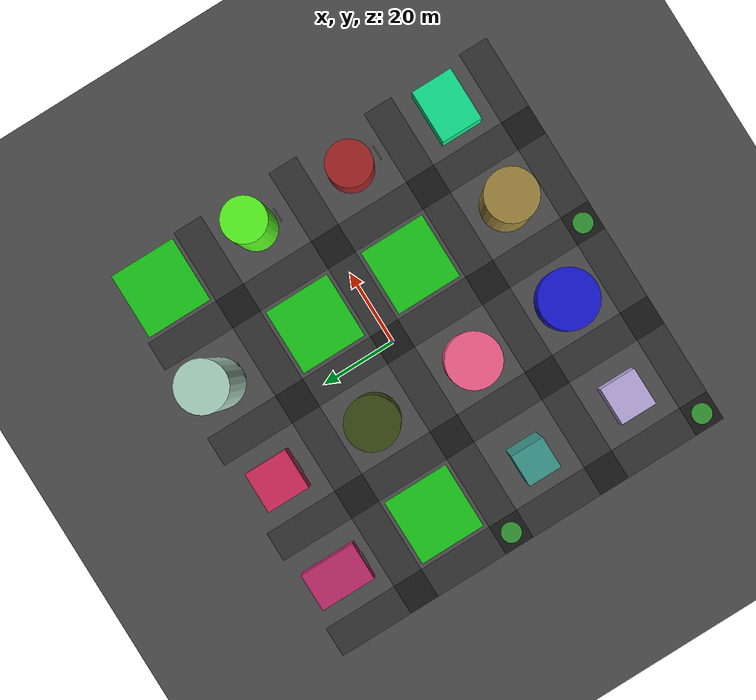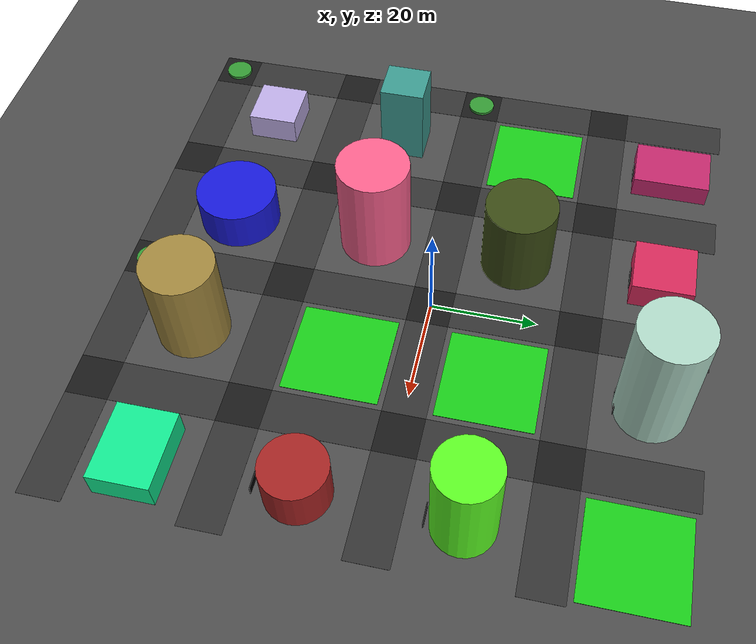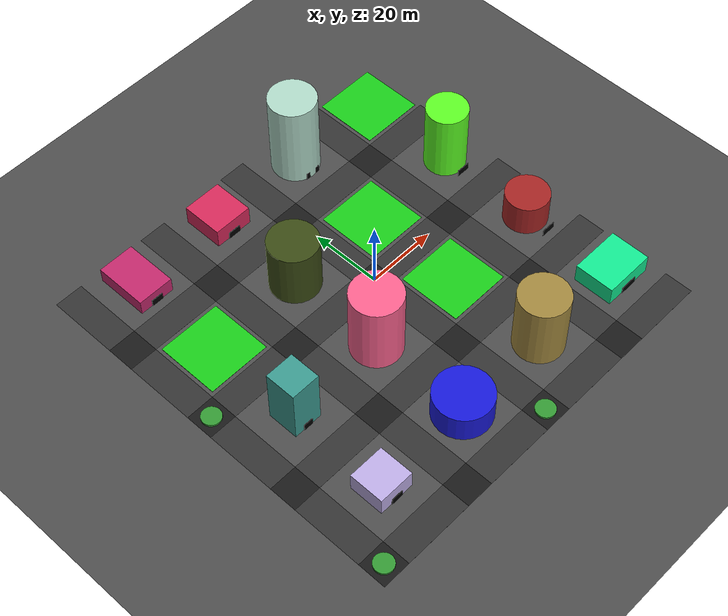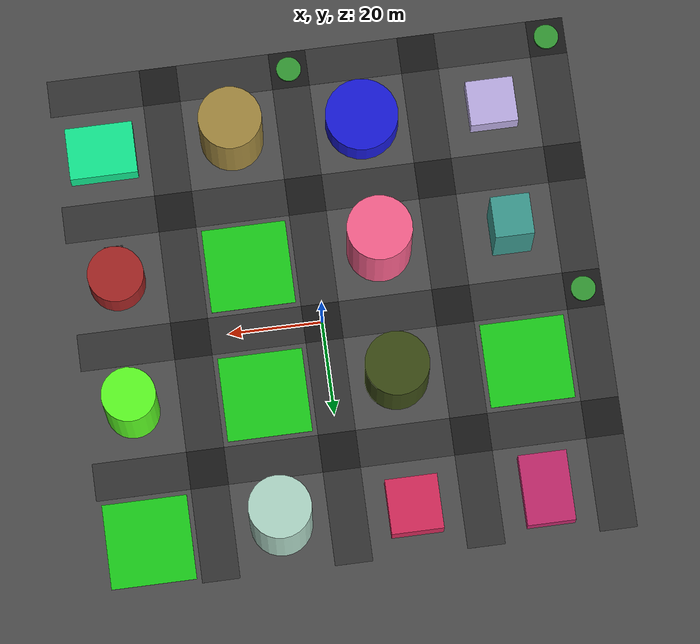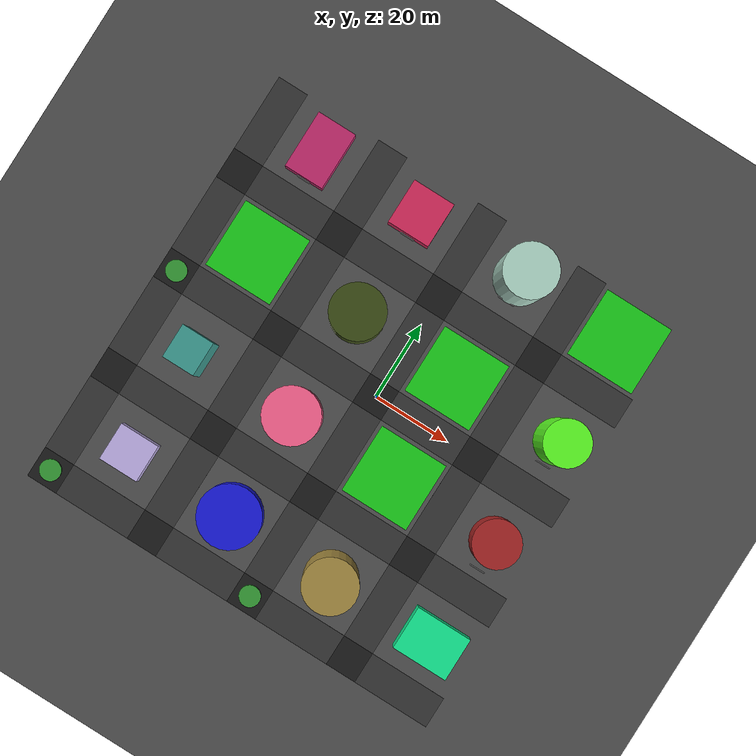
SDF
<?xml version="1.0" ?>
<sdf version="1.8">
  <world name="urban_city_rich">
    <physics name="1ms" type="ignored">
      <max_step_size>0.001</max_step_size>
      <real_time_factor>1.0</real_time_factor>
    </physics>
    <plugin filename="gz-sim-physics-system" name="gz::sim::systems::Physics"></plugin>
    <plugin filename="gz-sim-user-commands-system" name="gz::sim::systems::UserCommands"></plugin>
    <plugin filename="gz-sim-scene-broadcaster-system" name="gz::sim::systems::SceneBroadcaster"></plugin>
    <plugin filename="gz-sim-sensors-system" name="gz::sim::systems::Sensors">
        <render_engine>ogre2</render_engine>
    </plugin>
    <plugin filename="gz-sim-wind-effects-system" name="gz::sim::systems::WindEffects"></plugin>

    <light type="directional" name="sun">
      <cast_shadows>true</cast_shadows>
      <pose>0 0 10 0 0 0</pose>
      <diffuse>0.8 0.8 0.8 1</diffuse>
      <specular>0.2 0.2 0.2 1</specular>
      <direction>-0.5 0.1 -0.9</direction>
    </light>

    <model name="ground_plane">
      <static>true</static>
      <link name="link">
        <collision name="collision">
          <geometry><plane><normal>0 0 1</normal><size>200 200</size></plane></geometry>
          <surface>
            <friction>
              <ode>
                <mu>100</mu>
                <mu2>50</mu2>
              </ode>
            </friction>
          </surface>
        </collision>
        <visual name="visual">
          <geometry><plane><normal>0 0 1</normal><size>200 200</size></plane></geometry>
          <material><ambient>0.3 0.3 0.3 1</ambient><diffuse>0.3 0.3 0.3 1</diffuse></material>
        </visual>
      </link>
    </model>

    <model name="road_inter_-2_-2">
      <static>true</static>
      <pose>-56.0 -56.0 0.01 0 0 0</pose>
      <link name="link">
        <visual name="vis">
            <geometry><box><size>8.0 8.0 0.02</size></box></geometry>
            <material><ambient>0.1 0.1 0.1 1</ambient><diffuse>0.1 0.1 0.1 1</diffuse></material>
        </visual>
      </link>
    </model>

    <model name="roundabout_-2_-2">
      <static>true</static>
      <pose>-56.0 -56.0 0.3 0 0 0</pose>
      <link name="link">
        <collision name="col">
           <geometry><cylinder><radius>2.6666666666666665</radius><length>0.6</length></cylinder></geometry>
        </collision>
        <visual name="vis">
           <geometry><cylinder><radius>2.6666666666666665</radius><length>0.6</length></cylinder></geometry>
           <material><ambient>0.2 0.6 0.2 1</ambient><diffuse>0.2 0.6 0.2 1</diffuse></material>
        </visual>
      </link>
    </model>

    <model name="road_h_-2_-2">
      <static>true</static>
      <pose>-42.0 -56.0 0.01 0 0 0</pose>
      <link name="link">
        <visual name="vis">
            <geometry><box><size>20.0 8.0 0.02</size></box></geometry>
            <material><ambient>0.2 0.2 0.2 1</ambient><diffuse>0.2 0.2 0.2 1</diffuse></material>
        </visual>
      </link>
    </model>
    <model name="road_v_-2_-2">
      <static>true</static>
      <pose>-56.0 -42.0 0.01 0 0 0</pose>
      <link name="link">
        <visual name="vis">
            <geometry><box><size>8.0 20.0 0.02</size></box></geometry>
            <material><ambient>0.2 0.2 0.2 1</ambient><diffuse>0.2 0.2 0.2 1</diffuse></material>
        </visual>
      </link>
    </model>

    <model name="bldg_0">
      <static>true</static>
      <pose>-42.0 -42.0 2.7501075522266696 0 0 0</pose>
      <link name="link">
        <collision name="col">
           <geometry><box><size>10.200234546952954 9.785685905190583 5.500215104453339</size></box></geometry>
        </collision>
        <visual name="vis">
           <geometry><box><size>10.200234546952954 9.785685905190583 5.500215104453339</size></box></geometry>
           <material><ambient>0.7364712141640124 0.6766994874229113 0.8921795677048454 1</ambient><diffuse>0.7364712141640124 0.6766994874229113 0.8921795677048454 1</diffuse></material>
        </visual>
      </link>
    </model>

    <model name="door_0">
      <static>true</static>
      <pose>-42.0 -46.99284295259529 1.0 0 0 0</pose>
      <link name="link">
        <visual name="vis">
           <geometry><box><size>3.4000781823176514 0.2 2.0</size></box></geometry>
           <material><ambient>0 0 0 1</ambient><diffuse>0 0 0 1</diffuse></material>
        </visual>
      </link>
    </model>

    <model name="road_inter_-2_-1">
      <static>true</static>
      <pose>-56.0 -28.0 0.01 0 0 0</pose>
      <link name="link">
        <visual name="vis">
            <geometry><box><size>8.0 8.0 0.02</size></box></geometry>
            <material><ambient>0.1 0.1 0.1 1</ambient><diffuse>0.1 0.1 0.1 1</diffuse></material>
        </visual>
      </link>
    </model>

    <model name="road_h_-2_-1">
      <static>true</static>
      <pose>-42.0 -28.0 0.01 0 0 0</pose>
      <link name="link">
        <visual name="vis">
            <geometry><box><size>20.0 8.0 0.02</size></box></geometry>
            <material><ambient>0.2 0.2 0.2 1</ambient><diffuse>0.2 0.2 0.2 1</diffuse></material>
        </visual>
      </link>
    </model>
    <model name="road_v_-2_-1">
      <static>true</static>
      <pose>-56.0 -14.0 0.01 0 0 0</pose>
      <link name="link">
        <visual name="vis">
            <geometry><box><size>8.0 20.0 0.02</size></box></geometry>
            <material><ambient>0.2 0.2 0.2 1</ambient><diffuse>0.2 0.2 0.2 1</diffuse></material>
        </visual>
      </link>
    </model>

    <model name="bldg_1">
      <static>true</static>
      <pose>-42.0 -14.0 8.404925124490397 0 0 0</pose>
      <link name="link">
        <collision name="col">
           <geometry><box><size>8.254261435854268 8.74956191889274 16.809850248980794</size></box></geometry>
        </collision>
        <visual name="vis">
           <geometry><box><size>8.254261435854268 8.74956191889274 16.809850248980794</size></box></geometry>
           <material><ambient>0.2326608933907396 0.6020187290499803 0.561245062938613 1</ambient><diffuse>0.2326608933907396 0.6020187290499803 0.561245062938613 1</diffuse></material>
        </visual>
      </link>
    </model>

    <model name="door_1">
      <static>true</static>
      <pose>-42.0 -18.47478095944637 1.0 0 0 0</pose>
      <link name="link">
        <visual name="vis">
           <geometry><box><size>2.751420478618089 0.2 2.0</size></box></geometry>
           <material><ambient>0 0 0 1</ambient><diffuse>0 0 0 1</diffuse></material>
        </visual>
      </link>
    </model>

    <model name="road_inter_-2_0">
      <static>true</static>
      <pose>-56.0 0.0 0.01 0 0 0</pose>
      <link name="link">
        <visual name="vis">
            <geometry><box><size>8.0 8.0 0.02</size></box></geometry>
            <material><ambient>0.1 0.1 0.1 1</ambient><diffuse>0.1 0.1 0.1 1</diffuse></material>
        </visual>
      </link>
    </model>

    <model name="roundabout_-2_0">
      <static>true</static>
      <pose>-56.0 0.0 0.3 0 0 0</pose>
      <link name="link">
        <collision name="col">
           <geometry><cylinder><radius>2.6666666666666665</radius><length>0.6</length></cylinder></geometry>
        </collision>
        <visual name="vis">
           <geometry><cylinder><radius>2.6666666666666665</radius><length>0.6</length></cylinder></geometry>
           <material><ambient>0.2 0.6 0.2 1</ambient><diffuse>0.2 0.6 0.2 1</diffuse></material>
        </visual>
      </link>
    </model>

    <model name="road_h_-2_0">
      <static>true</static>
      <pose>-42.0 0.0 0.01 0 0 0</pose>
      <link name="link">
        <visual name="vis">
            <geometry><box><size>20.0 8.0 0.02</size></box></geometry>
            <material><ambient>0.2 0.2 0.2 1</ambient><diffuse>0.2 0.2 0.2 1</diffuse></material>
        </visual>
      </link>
    </model>
    <model name="road_v_-2_0">
      <static>true</static>
      <pose>-56.0 14.0 0.01 0 0 0</pose>
      <link name="link">
        <visual name="vis">
            <geometry><box><size>8.0 20.0 0.02</size></box></geometry>
            <material><ambient>0.2 0.2 0.2 1</ambient><diffuse>0.2 0.2 0.2 1</diffuse></material>
        </visual>
      </link>
    </model>

    <model name="park_-2_0">
      <static>true</static>
      <pose>-42.0 14.0 0.05 0 0 0</pose>
      <link name="link">
        <visual name="vis">
            <geometry><box><size>18.0 18.0 0.1</size></box></geometry>
            <material><ambient>0.1 0.8 0.1 1</ambient><diffuse>0.1 0.8 0.1 1</diffuse></material>
        </visual>
      </link>
    </model>

    <model name="road_inter_-2_1">
      <static>true</static>
      <pose>-56.0 28.0 0.01 0 0 0</pose>
      <link name="link">
        <visual name="vis">
            <geometry><box><size>8.0 8.0 0.02</size></box></geometry>
            <material><ambient>0.1 0.1 0.1 1</ambient><diffuse>0.1 0.1 0.1 1</diffuse></material>
        </visual>
      </link>
    </model>

    <model name="road_h_-2_1">
      <static>true</static>
      <pose>-42.0 28.0 0.01 0 0 0</pose>
      <link name="link">
        <visual name="vis">
            <geometry><box><size>20.0 8.0 0.02</size></box></geometry>
            <material><ambient>0.2 0.2 0.2 1</ambient><diffuse>0.2 0.2 0.2 1</diffuse></material>
        </visual>
      </link>
    </model>
    <model name="road_v_-2_1">
      <static>true</static>
      <pose>-56.0 42.0 0.01 0 0 0</pose>
      <link name="link">
        <visual name="vis">
            <geometry><box><size>8.0 20.0 0.02</size></box></geometry>
            <material><ambient>0.2 0.2 0.2 1</ambient><diffuse>0.2 0.2 0.2 1</diffuse></material>
        </visual>
      </link>
    </model>

    <model name="bldg_2">
      <static>true</static>
      <pose>-42.0 42.0 2.1738135694257803 0 0 0</pose>
      <link name="link">
        <collision name="col">
           <geometry><box><size>10.225525665845302 14.954402566343472 4.347627138851561</size></box></geometry>
        </collision>
        <visual name="vis">
           <geometry><box><size>10.225525665845302 14.954402566343472 4.347627138851561</size></box></geometry>
           <material><ambient>0.7588073671297673 0.15965931637689013 0.42261439815350255 1</ambient><diffuse>0.7588073671297673 0.15965931637689013 0.42261439815350255 1</diffuse></material>
        </visual>
      </link>
    </model>

    <model name="door_2">
      <static>true</static>
      <pose>-42.0 34.42279871682826 1.0 0 0 0</pose>
      <link name="link">
        <visual name="vis">
           <geometry><box><size>3.408508555281767 0.2 2.0</size></box></geometry>
           <material><ambient>0 0 0 1</ambient><diffuse>0 0 0 1</diffuse></material>
        </visual>
      </link>
    </model>

    <model name="road_inter_-1_-2">
      <static>true</static>
      <pose>-28.0 -56.0 0.01 0 0 0</pose>
      <link name="link">
        <visual name="vis">
            <geometry><box><size>8.0 8.0 0.02</size></box></geometry>
            <material><ambient>0.1 0.1 0.1 1</ambient><diffuse>0.1 0.1 0.1 1</diffuse></material>
        </visual>
      </link>
    </model>

    <model name="road_h_-1_-2">
      <static>true</static>
      <pose>-14.0 -56.0 0.01 0 0 0</pose>
      <link name="link">
        <visual name="vis">
            <geometry><box><size>20.0 8.0 0.02</size></box></geometry>
            <material><ambient>0.2 0.2 0.2 1</ambient><diffuse>0.2 0.2 0.2 1</diffuse></material>
        </visual>
      </link>
    </model>
    <model name="road_v_-1_-2">
      <static>true</static>
      <pose>-28.0 -42.0 0.01 0 0 0</pose>
      <link name="link">
        <visual name="vis">
            <geometry><box><size>8.0 20.0 0.02</size></box></geometry>
            <material><ambient>0.2 0.2 0.2 1</ambient><diffuse>0.2 0.2 0.2 1</diffuse></material>
        </visual>
      </link>
    </model>

    <model name="bldg_3">
      <static>true</static>
      <pose>-14.0 -42.0 4.054794998117815 0 0 0</pose>
      <link name="link">
        <collision name="col">
           <geometry><cylinder><radius>7.828852288827125</radius><length>8.10958999623563</length></cylinder></geometry>
        </collision>
        <visual name="vis">
           <geometry><cylinder><radius>7.828852288827125</radius><length>8.10958999623563</length></cylinder></geometry>
           <material><ambient>0.09274584338014791 0.09671637683346401 0.8474943663474598 1</ambient><diffuse>0.09274584338014791 0.09671637683346401 0.8474943663474598 1</diffuse></material>
        </visual>
      </link>
    </model>

    <model name="door_3">
      <static>true</static>
      <pose>-14.0 -47.44637818045051 1.0 0 0 0</pose>
      <link name="link">
        <visual name="vis">
           <geometry><box><size>5.2192348592180835 0.2 2.0</size></box></geometry>
           <material><ambient>0 0 0 1</ambient><diffuse>0 0 0 1</diffuse></material>
        </visual>
      </link>
    </model>

    <model name="road_inter_-1_-1">
      <static>true</static>
      <pose>-28.0 -28.0 0.01 0 0 0</pose>
      <link name="link">
        <visual name="vis">
            <geometry><box><size>8.0 8.0 0.02</size></box></geometry>
            <material><ambient>0.1 0.1 0.1 1</ambient><diffuse>0.1 0.1 0.1 1</diffuse></material>
        </visual>
      </link>
    </model>

    <model name="road_h_-1_-1">
      <static>true</static>
      <pose>-14.0 -28.0 0.01 0 0 0</pose>
      <link name="link">
        <visual name="vis">
            <geometry><box><size>20.0 8.0 0.02</size></box></geometry>
            <material><ambient>0.2 0.2 0.2 1</ambient><diffuse>0.2 0.2 0.2 1</diffuse></material>
        </visual>
      </link>
    </model>
    <model name="road_v_-1_-1">
      <static>true</static>
      <pose>-28.0 -14.0 0.01 0 0 0</pose>
      <link name="link">
        <visual name="vis">
            <geometry><box><size>8.0 20.0 0.02</size></box></geometry>
            <material><ambient>0.2 0.2 0.2 1</ambient><diffuse>0.2 0.2 0.2 1</diffuse></material>
        </visual>
      </link>
    </model>

    <model name="bldg_4">
      <static>true</static>
      <pose>-14.0 -14.0 10.571282732743802 0 0 0</pose>
      <link name="link">
        <collision name="col">
           <geometry><cylinder><radius>6.918927146775271</radius><length>21.142565465487603</length></cylinder></geometry>
        </collision>
        <visual name="vis">
           <geometry><cylinder><radius>6.918927146775271</radius><length>21.142565465487603</length></cylinder></geometry>
           <material><ambient>0.9731157639793706 0.3785343772083535 0.552040631273227 1</ambient><diffuse>0.9731157639793706 0.3785343772083535 0.552040631273227 1</diffuse></material>
        </visual>
      </link>
    </model>

    <model name="door_4">
      <static>true</static>
      <pose>-14.0 -20.244912365818806 1.0 0 0 0</pose>
      <link name="link">
        <visual name="vis">
           <geometry><box><size>4.612618097850181 0.2 2.0</size></box></geometry>
           <material><ambient>0 0 0 1</ambient><diffuse>0 0 0 1</diffuse></material>
        </visual>
      </link>
    </model>

    <model name="road_inter_-1_0">
      <static>true</static>
      <pose>-28.0 0.0 0.01 0 0 0</pose>
      <link name="link">
        <visual name="vis">
            <geometry><box><size>8.0 8.0 0.02</size></box></geometry>
            <material><ambient>0.1 0.1 0.1 1</ambient><diffuse>0.1 0.1 0.1 1</diffuse></material>
        </visual>
      </link>
    </model>

    <model name="road_h_-1_0">
      <static>true</static>
      <pose>-14.0 0.0 0.01 0 0 0</pose>
      <link name="link">
        <visual name="vis">
            <geometry><box><size>20.0 8.0 0.02</size></box></geometry>
            <material><ambient>0.2 0.2 0.2 1</ambient><diffuse>0.2 0.2 0.2 1</diffuse></material>
        </visual>
      </link>
    </model>
    <model name="road_v_-1_0">
      <static>true</static>
      <pose>-28.0 14.0 0.01 0 0 0</pose>
      <link name="link">
        <visual name="vis">
            <geometry><box><size>8.0 20.0 0.02</size></box></geometry>
            <material><ambient>0.2 0.2 0.2 1</ambient><diffuse>0.2 0.2 0.2 1</diffuse></material>
        </visual>
      </link>
    </model>

    <model name="bldg_5">
      <static>true</static>
      <pose>-14.0 14.0 8.273521452567621 0 0 0</pose>
      <link name="link">
        <collision name="col">
           <geometry><cylinder><radius>6.818287344859694</radius><length>16.547042905135243</length></cylinder></geometry>
        </collision>
        <visual name="vis">
           <geometry><cylinder><radius>6.818287344859694</radius><length>16.547042905135243</length></cylinder></geometry>
           <material><ambient>0.22789827565154686 0.28938796360210717 0.0797919769236275 1</ambient><diffuse>0.22789827565154686 0.28938796360210717 0.0797919769236275 1</diffuse></material>
        </visual>
      </link>
    </model>

    <model name="door_5">
      <static>true</static>
      <pose>-14.0 9.71670246537735 1.0 0 0 0</pose>
      <link name="link">
        <visual name="vis">
           <geometry><box><size>4.54552489657313 0.2 2.0</size></box></geometry>
           <material><ambient>0 0 0 1</ambient><diffuse>0 0 0 1</diffuse></material>
        </visual>
      </link>
    </model>

    <model name="road_inter_-1_1">
      <static>true</static>
      <pose>-28.0 28.0 0.01 0 0 0</pose>
      <link name="link">
        <visual name="vis">
            <geometry><box><size>8.0 8.0 0.02</size></box></geometry>
            <material><ambient>0.1 0.1 0.1 1</ambient><diffuse>0.1 0.1 0.1 1</diffuse></material>
        </visual>
      </link>
    </model>

    <model name="road_h_-1_1">
      <static>true</static>
      <pose>-14.0 28.0 0.01 0 0 0</pose>
      <link name="link">
        <visual name="vis">
            <geometry><box><size>20.0 8.0 0.02</size></box></geometry>
            <material><ambient>0.2 0.2 0.2 1</ambient><diffuse>0.2 0.2 0.2 1</diffuse></material>
        </visual>
      </link>
    </model>
    <model name="road_v_-1_1">
      <static>true</static>
      <pose>-28.0 42.0 0.01 0 0 0</pose>
      <link name="link">
        <visual name="vis">
            <geometry><box><size>8.0 20.0 0.02</size></box></geometry>
            <material><ambient>0.2 0.2 0.2 1</ambient><diffuse>0.2 0.2 0.2 1</diffuse></material>
        </visual>
      </link>
    </model>

    <model name="bldg_6">
      <static>true</static>
      <pose>-14.0 42.0 2.7997255001329044 0 0 0</pose>
      <link name="link">
        <collision name="col">
           <geometry><box><size>11.04100980031333 11.627282418947484 5.599451000265809</size></box></geometry>
        </collision>
        <visual name="vis">
           <geometry><box><size>11.04100980031333 11.627282418947484 5.599451000265809</size></box></geometry>
           <material><ambient>0.8341104266407503 0.1626540971560848 0.3552707002275215 1</ambient><diffuse>0.8341104266407503 0.1626540971560848 0.3552707002275215 1</diffuse></material>
        </visual>
      </link>
    </model>

    <model name="door_6">
      <static>true</static>
      <pose>-14.0 36.086358790526255 1.0 0 0 0</pose>
      <link name="link">
        <visual name="vis">
           <geometry><box><size>3.680336600104443 0.2 2.0</size></box></geometry>
           <material><ambient>0 0 0 1</ambient><diffuse>0 0 0 1</diffuse></material>
        </visual>
      </link>
    </model>

    <model name="road_inter_0_-2">
      <static>true</static>
      <pose>0.0 -56.0 0.01 0 0 0</pose>
      <link name="link">
        <visual name="vis">
            <geometry><box><size>8.0 8.0 0.02</size></box></geometry>
            <material><ambient>0.1 0.1 0.1 1</ambient><diffuse>0.1 0.1 0.1 1</diffuse></material>
        </visual>
      </link>
    </model>

    <model name="roundabout_0_-2">
      <static>true</static>
      <pose>0.0 -56.0 0.3 0 0 0</pose>
      <link name="link">
        <collision name="col">
           <geometry><cylinder><radius>2.6666666666666665</radius><length>0.6</length></cylinder></geometry>
        </collision>
        <visual name="vis">
           <geometry><cylinder><radius>2.6666666666666665</radius><length>0.6</length></cylinder></geometry>
           <material><ambient>0.2 0.6 0.2 1</ambient><diffuse>0.2 0.6 0.2 1</diffuse></material>
        </visual>
      </link>
    </model>

    <model name="road_h_0_-2">
      <static>true</static>
      <pose>14.0 -56.0 0.01 0 0 0</pose>
      <link name="link">
        <visual name="vis">
            <geometry><box><size>20.0 8.0 0.02</size></box></geometry>
            <material><ambient>0.2 0.2 0.2 1</ambient><diffuse>0.2 0.2 0.2 1</diffuse></material>
        </visual>
      </link>
    </model>
    <model name="road_v_0_-2">
      <static>true</static>
      <pose>0.0 -42.0 0.01 0 0 0</pose>
      <link name="link">
        <visual name="vis">
            <geometry><box><size>8.0 20.0 0.02</size></box></geometry>
            <material><ambient>0.2 0.2 0.2 1</ambient><diffuse>0.2 0.2 0.2 1</diffuse></material>
        </visual>
      </link>
    </model>

    <model name="bldg_7">
      <static>true</static>
      <pose>14.0 -42.0 9.518203134585512 0 0 0</pose>
      <link name="link">
        <collision name="col">
           <geometry><cylinder><radius>6.734190662146669</radius><length>19.036406269171025</length></cylinder></geometry>
        </collision>
        <visual name="vis">
           <geometry><cylinder><radius>6.734190662146669</radius><length>19.036406269171025</length></cylinder></geometry>
           <material><ambient>0.6349782881970603 0.534139877029708 0.24481092515142622 1</ambient><diffuse>0.6349782881970603 0.534139877029708 0.24481092515142622 1</diffuse></material>
        </visual>
      </link>
    </model>

    <model name="door_7">
      <static>true</static>
      <pose>14.0 -46.38561003831419 1.0 0 0 0</pose>
      <link name="link">
        <visual name="vis">
           <geometry><box><size>4.489460441431112 0.2 2.0</size></box></geometry>
           <material><ambient>0 0 0 1</ambient><diffuse>0 0 0 1</diffuse></material>
        </visual>
      </link>
    </model>

    <model name="road_inter_0_-1">
      <static>true</static>
      <pose>0.0 -28.0 0.01 0 0 0</pose>
      <link name="link">
        <visual name="vis">
            <geometry><box><size>8.0 8.0 0.02</size></box></geometry>
            <material><ambient>0.1 0.1 0.1 1</ambient><diffuse>0.1 0.1 0.1 1</diffuse></material>
        </visual>
      </link>
    </model>

    <model name="road_h_0_-1">
      <static>true</static>
      <pose>14.0 -28.0 0.01 0 0 0</pose>
      <link name="link">
        <visual name="vis">
            <geometry><box><size>20.0 8.0 0.02</size></box></geometry>
            <material><ambient>0.2 0.2 0.2 1</ambient><diffuse>0.2 0.2 0.2 1</diffuse></material>
        </visual>
      </link>
    </model>
    <model name="road_v_0_-1">
      <static>true</static>
      <pose>0.0 -14.0 0.01 0 0 0</pose>
      <link name="link">
        <visual name="vis">
            <geometry><box><size>8.0 20.0 0.02</size></box></geometry>
            <material><ambient>0.2 0.2 0.2 1</ambient><diffuse>0.2 0.2 0.2 1</diffuse></material>
        </visual>
      </link>
    </model>

    <model name="park_0_-1">
      <static>true</static>
      <pose>14.0 -14.0 0.05 0 0 0</pose>
      <link name="link">
        <visual name="vis">
            <geometry><box><size>18.0 18.0 0.1</size></box></geometry>
            <material><ambient>0.1 0.8 0.1 1</ambient><diffuse>0.1 0.8 0.1 1</diffuse></material>
        </visual>
      </link>
    </model>

    <model name="road_inter_0_0">
      <static>true</static>
      <pose>0.0 0.0 0.01 0 0 0</pose>
      <link name="link">
        <visual name="vis">
            <geometry><box><size>8.0 8.0 0.02</size></box></geometry>
            <material><ambient>0.1 0.1 0.1 1</ambient><diffuse>0.1 0.1 0.1 1</diffuse></material>
        </visual>
      </link>
    </model>

    <model name="road_h_0_0">
      <static>true</static>
      <pose>14.0 0.0 0.01 0 0 0</pose>
      <link name="link">
        <visual name="vis">
            <geometry><box><size>20.0 8.0 0.02</size></box></geometry>
            <material><ambient>0.2 0.2 0.2 1</ambient><diffuse>0.2 0.2 0.2 1</diffuse></material>
        </visual>
      </link>
    </model>
    <model name="road_v_0_0">
      <static>true</static>
      <pose>0.0 14.0 0.01 0 0 0</pose>
      <link name="link">
        <visual name="vis">
            <geometry><box><size>8.0 20.0 0.02</size></box></geometry>
            <material><ambient>0.2 0.2 0.2 1</ambient><diffuse>0.2 0.2 0.2 1</diffuse></material>
        </visual>
      </link>
    </model>

    <model name="park_0_0">
      <static>true</static>
      <pose>14.0 14.0 0.05 0 0 0</pose>
      <link name="link">
        <visual name="vis">
            <geometry><box><size>18.0 18.0 0.1</size></box></geometry>
            <material><ambient>0.1 0.8 0.1 1</ambient><diffuse>0.1 0.8 0.1 1</diffuse></material>
        </visual>
      </link>
    </model>

    <model name="road_inter_0_1">
      <static>true</static>
      <pose>0.0 28.0 0.01 0 0 0</pose>
      <link name="link">
        <visual name="vis">
            <geometry><box><size>8.0 8.0 0.02</size></box></geometry>
            <material><ambient>0.1 0.1 0.1 1</ambient><diffuse>0.1 0.1 0.1 1</diffuse></material>
        </visual>
      </link>
    </model>

    <model name="road_h_0_1">
      <static>true</static>
      <pose>14.0 28.0 0.01 0 0 0</pose>
      <link name="link">
        <visual name="vis">
            <geometry><box><size>20.0 8.0 0.02</size></box></geometry>
            <material><ambient>0.2 0.2 0.2 1</ambient><diffuse>0.2 0.2 0.2 1</diffuse></material>
        </visual>
      </link>
    </model>
    <model name="road_v_0_1">
      <static>true</static>
      <pose>0.0 42.0 0.01 0 0 0</pose>
      <link name="link">
        <visual name="vis">
            <geometry><box><size>8.0 20.0 0.02</size></box></geometry>
            <material><ambient>0.2 0.2 0.2 1</ambient><diffuse>0.2 0.2 0.2 1</diffuse></material>
        </visual>
      </link>
    </model>

    <model name="bldg_8">
      <static>true</static>
      <pose>14.0 42.0 12.395233506365953 0 0 0</pose>
      <link name="link">
        <collision name="col">
           <geometry><cylinder><radius>6.559999039416372</radius><length>24.790467012731906</length></cylinder></geometry>
        </collision>
        <visual name="vis">
           <geometry><cylinder><radius>6.559999039416372</radius><length>24.790467012731906</length></cylinder></geometry>
           <material><ambient>0.6846142509898746 0.8428519201898096 0.7759999115462448 1</ambient><diffuse>0.6846142509898746 0.8428519201898096 0.7759999115462448 1</diffuse></material>
        </visual>
      </link>
    </model>

    <model name="door_8">
      <static>true</static>
      <pose>14.0 35.67220102490141 1.0 0 0 0</pose>
      <link name="link">
        <visual name="vis">
           <geometry><box><size>4.373332692944248 0.2 2.0</size></box></geometry>
           <material><ambient>0 0 0 1</ambient><diffuse>0 0 0 1</diffuse></material>
        </visual>
      </link>
    </model>

    <model name="road_inter_1_-2">
      <static>true</static>
      <pose>28.0 -56.0 0.01 0 0 0</pose>
      <link name="link">
        <visual name="vis">
            <geometry><box><size>8.0 8.0 0.02</size></box></geometry>
            <material><ambient>0.1 0.1 0.1 1</ambient><diffuse>0.1 0.1 0.1 1</diffuse></material>
        </visual>
      </link>
    </model>

    <model name="road_h_1_-2">
      <static>true</static>
      <pose>42.0 -56.0 0.01 0 0 0</pose>
      <link name="link">
        <visual name="vis">
            <geometry><box><size>20.0 8.0 0.02</size></box></geometry>
            <material><ambient>0.2 0.2 0.2 1</ambient><diffuse>0.2 0.2 0.2 1</diffuse></material>
        </visual>
      </link>
    </model>
    <model name="road_v_1_-2">
      <static>true</static>
      <pose>28.0 -42.0 0.01 0 0 0</pose>
      <link name="link">
        <visual name="vis">
            <geometry><box><size>8.0 20.0 0.02</size></box></geometry>
            <material><ambient>0.2 0.2 0.2 1</ambient><diffuse>0.2 0.2 0.2 1</diffuse></material>
        </visual>
      </link>
    </model>

    <model name="bldg_9">
      <static>true</static>
      <pose>42.0 -42.0 2.7327038910102126 0 0 0</pose>
      <link name="link">
        <collision name="col">
           <geometry><box><size>14.440366406169716 11.209318296178632 5.465407782020425</size></box></geometry>
        </collision>
        <visual name="vis">
           <geometry><box><size>14.440366406169716 11.209318296178632 5.465407782020425</size></box></geometry>
           <material><ambient>0.06618860521154724 0.913136124185545 0.5671800514785023 1</ambient><diffuse>0.06618860521154724 0.913136124185545 0.5671800514785023 1</diffuse></material>
        </visual>
      </link>
    </model>

    <model name="door_9">
      <static>true</static>
      <pose>42.0 -47.70465914808932 1.0 0 0 0</pose>
      <link name="link">
        <visual name="vis">
           <geometry><box><size>4.813455468723238 0.2 2.0</size></box></geometry>
           <material><ambient>0 0 0 1</ambient><diffuse>0 0 0 1</diffuse></material>
        </visual>
      </link>
    </model>

    <model name="road_inter_1_-1">
      <static>true</static>
      <pose>28.0 -28.0 0.01 0 0 0</pose>
      <link name="link">
        <visual name="vis">
            <geometry><box><size>8.0 8.0 0.02</size></box></geometry>
            <material><ambient>0.1 0.1 0.1 1</ambient><diffuse>0.1 0.1 0.1 1</diffuse></material>
        </visual>
      </link>
    </model>

    <model name="road_h_1_-1">
      <static>true</static>
      <pose>42.0 -28.0 0.01 0 0 0</pose>
      <link name="link">
        <visual name="vis">
            <geometry><box><size>20.0 8.0 0.02</size></box></geometry>
            <material><ambient>0.2 0.2 0.2 1</ambient><diffuse>0.2 0.2 0.2 1</diffuse></material>
        </visual>
      </link>
    </model>
    <model name="road_v_1_-1">
      <static>true</static>
      <pose>28.0 -14.0 0.01 0 0 0</pose>
      <link name="link">
        <visual name="vis">
            <geometry><box><size>8.0 20.0 0.02</size></box></geometry>
            <material><ambient>0.2 0.2 0.2 1</ambient><diffuse>0.2 0.2 0.2 1</diffuse></material>
        </visual>
      </link>
    </model>

    <model name="bldg_10">
      <static>true</static>
      <pose>42.0 -14.0 4.626265440541406 0 0 0</pose>
      <link name="link">
        <collision name="col">
           <geometry><cylinder><radius>5.99692503796911</radius><length>9.252530881082812</length></cylinder></geometry>
        </collision>
        <visual name="vis">
           <geometry><cylinder><radius>5.99692503796911</radius><length>9.252530881082812</length></cylinder></geometry>
           <material><ambient>0.6428518702004242 0.14287159044206266 0.1396303195255063 1</ambient><diffuse>0.6428518702004242 0.14287159044206266 0.1396303195255063 1</diffuse></material>
        </visual>
      </link>
    </model>

    <model name="door_10">
      <static>true</static>
      <pose>42.0 -21.63873261554681 1.0 0 0 0</pose>
      <link name="link">
        <visual name="vis">
           <geometry><box><size>3.99795002531274 0.2 2.0</size></box></geometry>
           <material><ambient>0 0 0 1</ambient><diffuse>0 0 0 1</diffuse></material>
        </visual>
      </link>
    </model>

    <model name="road_inter_1_0">
      <static>true</static>
      <pose>28.0 0.0 0.01 0 0 0</pose>
      <link name="link">
        <visual name="vis">
            <geometry><box><size>8.0 8.0 0.02</size></box></geometry>
            <material><ambient>0.1 0.1 0.1 1</ambient><diffuse>0.1 0.1 0.1 1</diffuse></material>
        </visual>
      </link>
    </model>

    <model name="road_h_1_0">
      <static>true</static>
      <pose>42.0 0.0 0.01 0 0 0</pose>
      <link name="link">
        <visual name="vis">
            <geometry><box><size>20.0 8.0 0.02</size></box></geometry>
            <material><ambient>0.2 0.2 0.2 1</ambient><diffuse>0.2 0.2 0.2 1</diffuse></material>
        </visual>
      </link>
    </model>
    <model name="road_v_1_0">
      <static>true</static>
      <pose>28.0 14.0 0.01 0 0 0</pose>
      <link name="link">
        <visual name="vis">
            <geometry><box><size>8.0 20.0 0.02</size></box></geometry>
            <material><ambient>0.2 0.2 0.2 1</ambient><diffuse>0.2 0.2 0.2 1</diffuse></material>
        </visual>
      </link>
    </model>

    <model name="bldg_11">
      <static>true</static>
      <pose>42.0 14.0 9.970138116522579 0 0 0</pose>
      <link name="link">
        <collision name="col">
           <geometry><cylinder><radius>5.713735309178318</radius><length>19.940276233045157</length></cylinder></geometry>
        </collision>
        <visual name="vis">
           <geometry><cylinder><radius>5.713735309178318</radius><length>19.940276233045157</length></cylinder></geometry>
           <material><ambient>0.36199644371361095 0.997325777989161 0.13833174489085587 1</ambient><diffuse>0.36199644371361095 0.997325777989161 0.13833174489085587 1</diffuse></material>
        </visual>
      </link>
    </model>

    <model name="door_11">
      <static>true</static>
      <pose>42.0 7.565868300217375 1.0 0 0 0</pose>
      <link name="link">
        <visual name="vis">
           <geometry><box><size>3.8091568727855454 0.2 2.0</size></box></geometry>
           <material><ambient>0 0 0 1</ambient><diffuse>0 0 0 1</diffuse></material>
        </visual>
      </link>
    </model>

    <model name="road_inter_1_1">
      <static>true</static>
      <pose>28.0 28.0 0.01 0 0 0</pose>
      <link name="link">
        <visual name="vis">
            <geometry><box><size>8.0 8.0 0.02</size></box></geometry>
            <material><ambient>0.1 0.1 0.1 1</ambient><diffuse>0.1 0.1 0.1 1</diffuse></material>
        </visual>
      </link>
    </model>

    <model name="road_h_1_1">
      <static>true</static>
      <pose>42.0 28.0 0.01 0 0 0</pose>
      <link name="link">
        <visual name="vis">
            <geometry><box><size>20.0 8.0 0.02</size></box></geometry>
            <material><ambient>0.2 0.2 0.2 1</ambient><diffuse>0.2 0.2 0.2 1</diffuse></material>
        </visual>
      </link>
    </model>
    <model name="road_v_1_1">
      <static>true</static>
      <pose>28.0 42.0 0.01 0 0 0</pose>
      <link name="link">
        <visual name="vis">
            <geometry><box><size>8.0 20.0 0.02</size></box></geometry>
            <material><ambient>0.2 0.2 0.2 1</ambient><diffuse>0.2 0.2 0.2 1</diffuse></material>
        </visual>
      </link>
    </model>

    <model name="park_1_1">
      <static>true</static>
      <pose>42.0 42.0 0.05 0 0 0</pose>
      <link name="link">
        <visual name="vis">
            <geometry><box><size>18.0 18.0 0.1</size></box></geometry>
            <material><ambient>0.1 0.8 0.1 1</ambient><diffuse>0.1 0.8 0.1 1</diffuse></material>
        </visual>
      </link>
    </model>

  </world>
</sdf>
